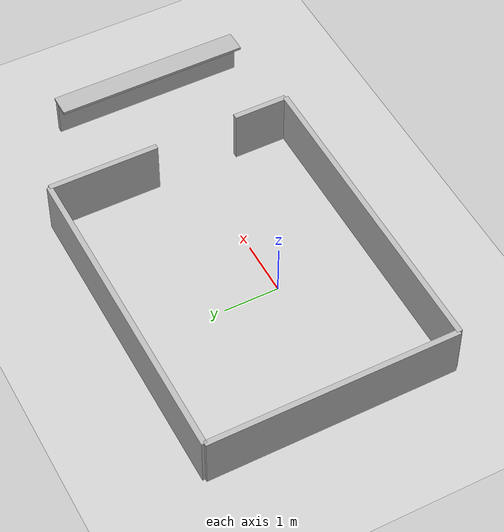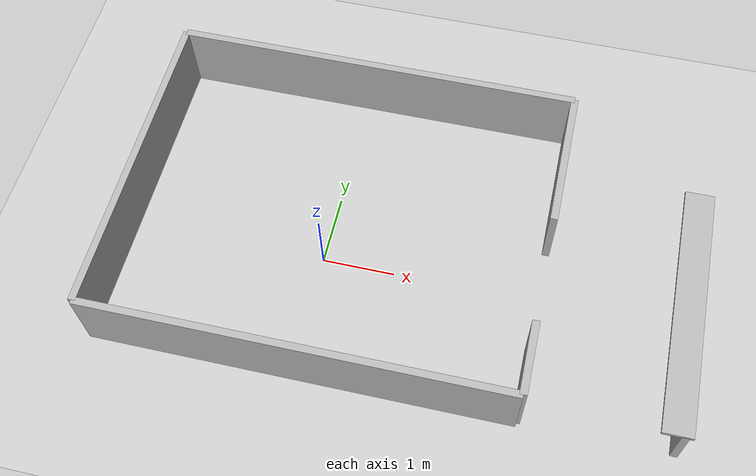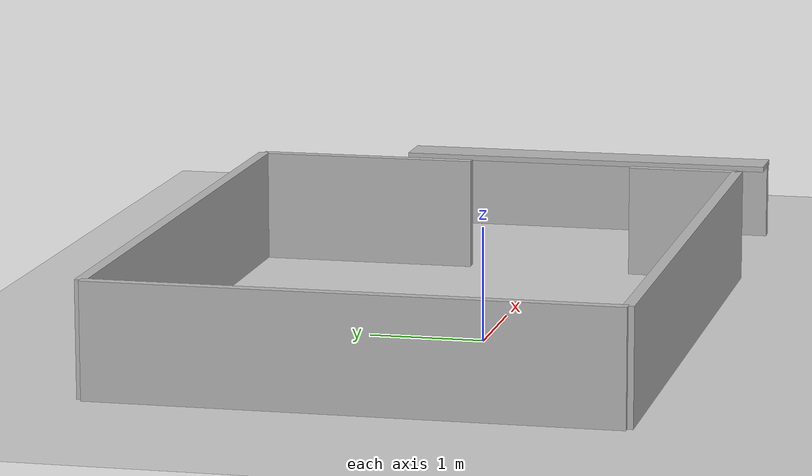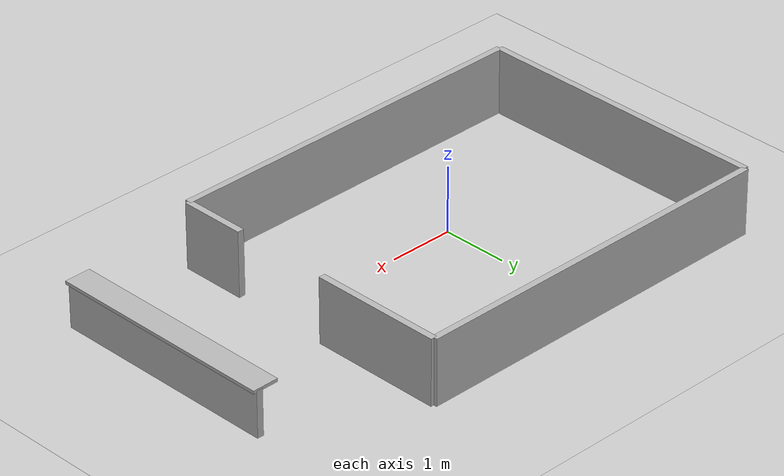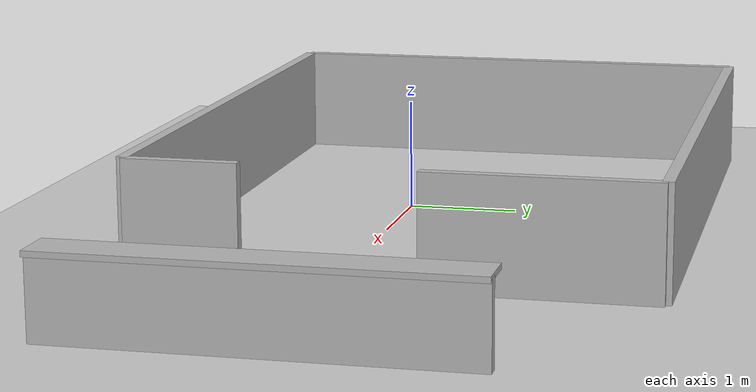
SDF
<sdf version="1.4">
 <world name="stockroom">
  <include><uri>model://sun</uri></include>
  <include><uri>model://ground_plane</uri></include>
  <model name="wall_1">
   <static>true</static>
   <pose>0.125 -1.75 0.5 0 0 0</pose>
   <link name="link">
    <collision name="collision"><geometry><box><size>5.75 0.1 1</size></box></geometry></collision>
    <visual name="visual"><geometry><box><size>5.75 0.1 1</size></box></geometry></visual>
   </link>
  </model>
  <model name="wall_2">
   <static>true</static>
   <pose>-2.75 0.5 0.5 0 0 0</pose>
   <link name="link">
    <collision name="collision"><geometry><box><size>0.1 4.5 1</size></box></geometry></collision>
    <visual name="visual"><geometry><box><size>0.1 4.5 1</size></box></geometry></visual>
   </link>
  </model>
  <model name="wall_3">
   <static>true</static>
   <pose>0.125 2.75 0.5 0 0 0</pose>
   <link name="link">
    <collision name="collision"><geometry><box><size>5.75 0.1 1</size></box></geometry></collision>
    <visual name="visual"><geometry><box><size>5.75 0.1 1</size></box></geometry></visual>
   </link>
  </model>
  <model name="wall_4">
   <static>true</static>
   <pose>3.0 1.75 0.5 0 0 0</pose>
   <link name="link">
    <collision name="collision"><geometry><box><size>0.1 2.0 1</size></box></geometry></collision>
    <visual name="visual"><geometry><box><size>0.1 2.0 1</size></box></geometry></visual>
   </link>
  </model>
  <model name="wall_5">
   <static>true</static>
   <pose>3.0 -1.25 0.5 0 0 0</pose>
   <link name="link">
    <collision name="collision"><geometry><box><size>0.1 1.0 1</size></box></geometry></collision>
    <visual name="visual"><geometry><box><size>0.1 1.0 1</size></box></geometry></visual>
   </link>
  </model>
  <model name="wall_8">
   <static>true</static>
   <pose>5.0 0.0 0.35 0 0 0</pose>
   <link name="link">
    <collision name="collision"><geometry><box><size>0.1 3.5 0.7</size></box></geometry></collision>
    <visual name="visual"><geometry><box><size>0.1 3.5 0.7</size></box></geometry></visual>
   </link>
  </model>
  <model name="counter_top">
   <static>true</static>
   <pose>4.9 0 0.7 0 0 0</pose>
   <link name="link">
    <collision name="collision"><geometry><box><size>0.4 3.5 0.05</size></box></geometry></collision>
    <visual name="visual"><geometry><box><size>0.4 3.5 0.05</size></box></geometry></visual>
   </link>
  </model>
 </world>
</sdf>
